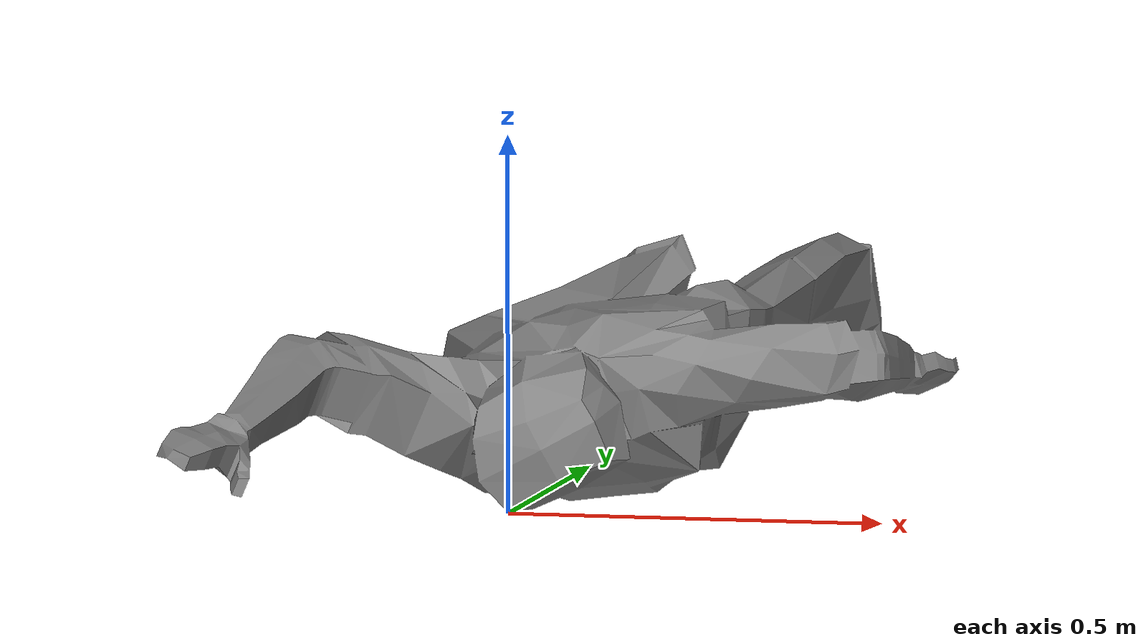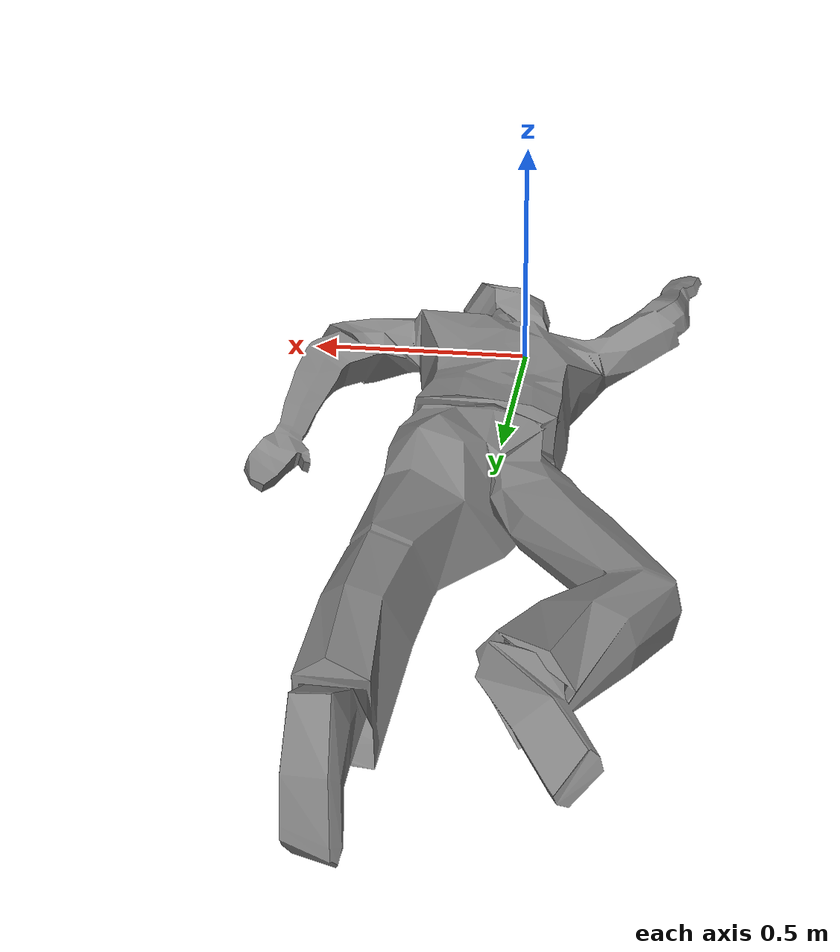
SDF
<?xml version="1.0" ?>
<sdf version="1.6">
  <model name="human_resting">
    <static>true</static>
    <link name="link">
      <collision name="collision">
        <geometry>
          <mesh>
            <uri>model://human_resting_description/gazebo_model/meshes/man_resting.dae</uri>
          </mesh>
        </geometry>
      </collision>
      <visual name="visual">
        <geometry>
          <mesh>
            <uri>model://human_resting_description/gazebo_model/meshes/man_resting.dae</uri>
          </mesh>
        </geometry>
      </visual>
    </link>
  </model>
</sdf>
